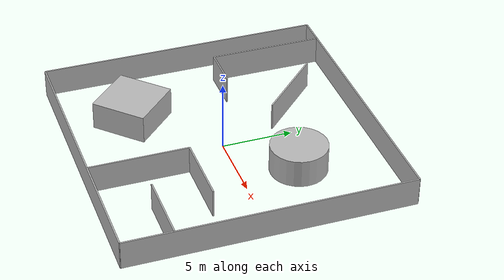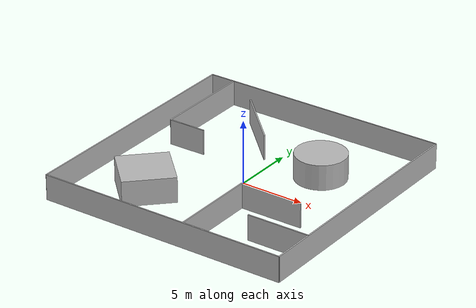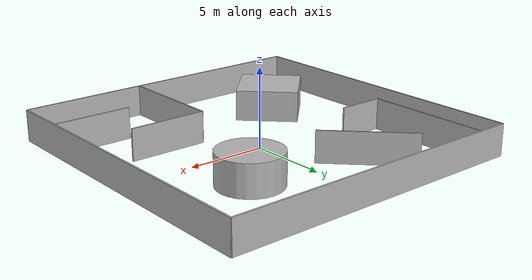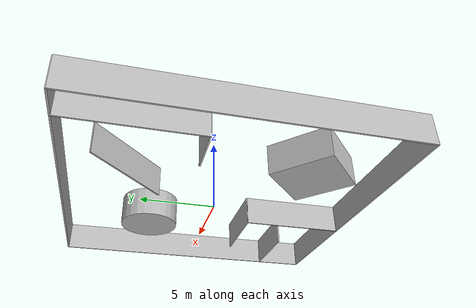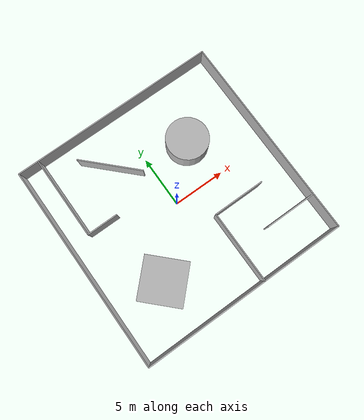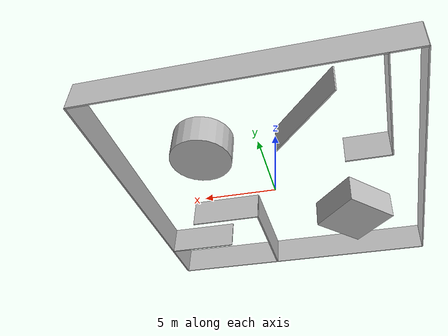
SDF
<?xml version="1.0" ?>
<sdf version="1.5">

<model name="arena">
  <static>true</static>
  <link name="wall1">
    <pose>-10 0 1 0 0 0</pose>
    <must_be_base_link>1</must_be_base_link>
    <collision name="collision">
       <geometry>
         <box>
           <size>0.1 20 2</size>  <!-- adjust this to whatever you want -->
        </box>
       </geometry>
     </collision>
     <visual name="visual">
       <cast_shadows>false</cast_shadows>
       <geometry>
         <box>
          <size>0.1 20 2</size>  <!-- adjust this to whatever you want -->
          </box>
      </geometry>
     </visual>
  </link>

  <link name="wall2">
    <pose>0 10 1 0 0 1.5707</pose>
    <must_be_base_link>1</must_be_base_link>
    <collision name="collision">
       <geometry>
         <box>
           <size>0.1 20 2</size>  <!-- adjust this to whatever you want -->
        </box>
       </geometry>
     </collision>
     <visual name="visual">
       <cast_shadows>false</cast_shadows>
       <geometry>
         <box>
          <size>0.1 20 2</size>  <!-- adjust this to whatever you want -->
          </box>
      </geometry>
     </visual>
    </link>

    <link name="wall3">
    <pose>0 -10 1 0 0 1.5707</pose>
    <must_be_base_link>1</must_be_base_link>
    <collision name="collision">
       <geometry>
         <box>
           <size>0.1 20 2</size>  <!-- adjust this to whatever you want -->
        </box>
       </geometry>
     </collision>
     <visual name="visual">
       <cast_shadows>false</cast_shadows>
       <geometry>
         <box>
          <size>0.1 20 2</size>  <!-- adjust this to whatever you want -->
          </box>
      </geometry>
     </visual>
    </link>

    <link name="wall4">
    <pose>10 0 1 0 0 0</pose>
    <must_be_base_link>1</must_be_base_link>
    <collision name="collision">
       <geometry>
         <box>
           <size>0.1 20 2</size>  <!-- adjust this to whatever you want -->
        </box>
       </geometry>
     </collision>
     <visual name="visual">
       <cast_shadows>false</cast_shadows>
       <geometry>
         <box>
          <size>0.1 20 2</size>  <!-- adjust this to whatever you want -->
          </box>
      </geometry>
     </visual>
    </link>

    <link name="cornerwall1">
    <pose>-8 6 1 0 0 0</pose>
    <must_be_base_link>1</must_be_base_link>
    <collision name="collision">
       <geometry>
         <box>
           <size>0.1 8 2</size>
        </box>
       </geometry>
     </collision>
     <visual name="visual">
       <cast_shadows>false</cast_shadows>
       <geometry>
        <box>
          <size>0.1 8 2</size>
        </box>
      </geometry>
     </visual>
    </link>

    <link name="cornerwall2">
    <pose>-6.5 2 1 0 0 1.5707</pose>
    <must_be_base_link>1</must_be_base_link>
    <collision name="collision">
       <geometry>
         <box>
           <size>0.1 3 2</size>
        </box>
       </geometry>
     </collision>
     <visual name="visual">
       <cast_shadows>false</cast_shadows>
       <geometry>
         <box>
          <size>0.1 3 2</size>
          </box>
      </geometry>
     </visual>
    </link>

    <link name="rotcubic">
    <pose>-5 -5 1 0 0 0.78535</pose>
    <must_be_base_link>1</must_be_base_link>
    <collision name="collision">
       <geometry>
         <box>
           <size>4 4 2</size>
        </box>
       </geometry>
     </collision>
     <visual name="visual">
       <cast_shadows>false</cast_shadows>
       <geometry>
         <box>
          <size>4 4 2</size>
          </box>
      </geometry>
     </visual>
    </link>

    <link name="tiltwall">
    <pose>-3 6 1 0 0 0.78535</pose>
    <must_be_base_link>1</must_be_base_link>
    <collision name="collision">
       <geometry>
         <box>
           <size>0.1 6 2</size>
        </box>
       </geometry>
     </collision>
     <visual name="visual">
       <cast_shadows>false</cast_shadows>
       <geometry>
         <box>
          <size>0.1 6 2</size>
          </box>
      </geometry>
     </visual>
    </link>

    <link name="cylinder">
    <pose>4 4 1 0 0 0.78535</pose>
    <must_be_base_link>1</must_be_base_link>
    <collision name="collision">
       <geometry>
        <cylinder>
          <radius>2</radius>
          <length>2</length>
        </cylinder>
       </geometry>
     </collision>
     <visual name="visual">
       <cast_shadows>false</cast_shadows>
       <geometry>
         <cylinder>
          <radius>2</radius>
          <length>2</length>
        </cylinder>
      </geometry>
     </visual>
    </link>

    <link name="boxwall1">
    <pose>2 -6.5 1 0 0 0</pose>
    <must_be_base_link>1</must_be_base_link>
    <collision name="collision">
       <geometry>
         <box>
           <size>0.1 7 2</size>
        </box>
       </geometry>
     </collision>
     <visual name="visual">
       <cast_shadows>false</cast_shadows>
       <geometry>
         <box>
          <size>0.1 7 2</size>
          </box>
      </geometry>
     </visual>
    </link>

    <link name="boxwall2">
    <pose>4.5 -3 1 0 0 1.5707</pose>
    <must_be_base_link>1</must_be_base_link>
    <collision name="collision">
       <geometry>
         <box>
           <size>0.1 5 2</size>
        </box>
       </geometry>
     </collision>
     <visual name="visual">
       <cast_shadows>false</cast_shadows>
       <geometry>
         <box>
          <size>0.1 5 2</size>
          </box>
      </geometry>
     </visual>
    </link>

    <link name="boxwall3">
    <pose>7.5 -6.5 1 0 0 1.5707</pose>
    <must_be_base_link>1</must_be_base_link>
    <collision name="collision">
       <geometry>
         <box>
           <size>0.1 5 2</size>
        </box>
       </geometry>
     </collision>
     <visual name="visual">
       <cast_shadows>false</cast_shadows>
       <geometry>
         <box>
          <size>0.1 5 2</size>
          </box>
      </geometry>
     </visual>
    </link>

</model>
</sdf>
